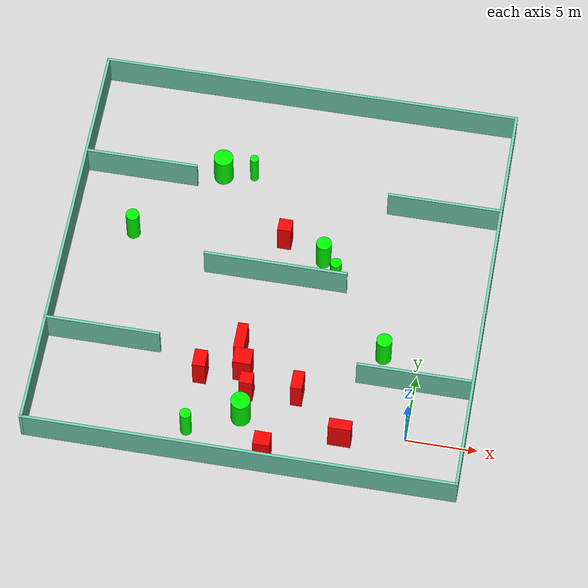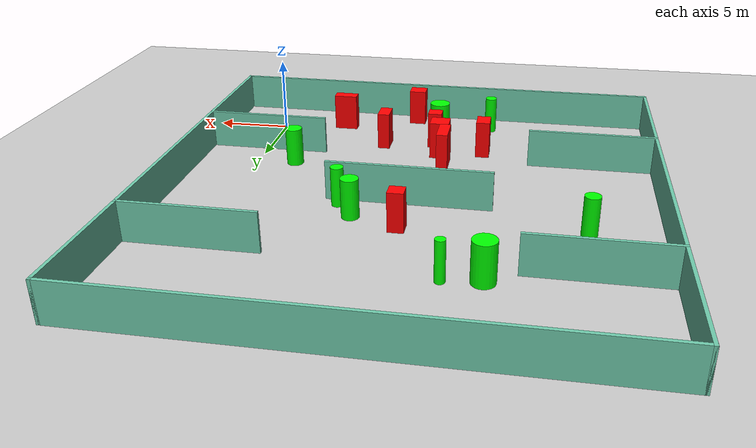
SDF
<sdf version="1.7">
 <world name="default">
  <light name="sun" type="directional">
   <pose>0 0 10 0 -0 0</pose>
   <diffuse>0.8 0.8 0.8 1</diffuse>
   <specular>0.2 0.2 0.2 1</specular>
   <attenuation>
    <range>1000</range>
    <constant>0.9</constant>
    <linear>0.01</linear>
    <quadratic>0.001</quadratic>
   </attenuation>
   <direction>-0.5 0.1 -0.9</direction>
   <spot><inner_angle>0</inner_angle><outer_angle>0</outer_angle><falloff>0</falloff></spot>
  </light>
  <model name="ground_plane">
   <static>1</static>
   <link name="link">
    <collision name="collision">
     <geometry><plane><normal>0 0 1</normal><size>100 100</size></plane></geometry>
     <surface>
      <contact><collide_bitmask>65535</collide_bitmask></contact>
      <friction><ode><mu>100</mu><mu2>50</mu2></ode></friction>
     </surface>
    </collision>
    <visual name="visual">
     <cast_shadows>0</cast_shadows>
     <geometry><plane><normal>0 0 1</normal><size>100 100</size></plane></geometry>
     <material>
      <script><uri>file://media/materials/scripts/gazebo.material</uri><name>Gazebo/Grey</name></script>
     </material>
    </visual>
   </link>
  </model>
  <gravity>0 0 -9.8</gravity>
  <magnetic_field>6e-06 2.3e-05 -4.2e-05</magnetic_field>
  <atmosphere type="adiabatic"/>
  <physics type="ode">
   <max_step_size>0.001</max_step_size>
   <real_time_factor>1</real_time_factor>
   <real_time_update_rate>1000</real_time_update_rate>
  </physics>
  <scene><ambient>0.4 0.4 0.4 1</ambient><background>0.7 0.7 0.7 1</background><shadows>1</shadows></scene>
  <spherical_coordinates>
   <surface_model>EARTH_WGS84</surface_model>
   <latitude_deg>0</latitude_deg>
   <longitude_deg>0</longitude_deg>
   <elevation>0</elevation>
   <heading_deg>0</heading_deg>
  </spherical_coordinates>
  <model name="my_base_walls">
   <link name="Wall_10">
    <collision name="Wall_10_Collision">
     <geometry><box><size>8.2 0.2 2.5</size></box></geometry>
     <pose>0 0 1.25 0 -0 0</pose>
    </collision>
    <visual name="Wall_10_Visual">
     <pose>0 0 1.25 0 -0 0</pose>
     <geometry><box><size>8.2 0.2 2.5</size></box></geometry>
     <material>
      <script><uri>file://media/materials/scripts/gazebo.material</uri><name>Gazebo/Grey</name></script>
      <ambient>0.435294 0.796078 0.67451 1</ambient>
     </material>
     <meta><layer>0</layer></meta>
    </visual>
    <pose>-11 -7 0 0 -0 0</pose>
   </link>
   <link name="Wall_12">
    <collision name="Wall_12_Collision">
     <geometry><box><size>8.2 0.2 2.5</size></box></geometry>
     <pose>0 0 1.25 0 -0 0</pose>
    </collision>
    <visual name="Wall_12_Visual">
     <pose>0 0 1.25 0 -0 0</pose>
     <geometry><box><size>8.2 0.2 2.5</size></box></geometry>
     <material>
      <script><uri>file://media/materials/scripts/gazebo.material</uri><name>Gazebo/Grey</name></script>
      <ambient>0.435294 0.796078 0.67451 1</ambient>
     </material>
     <meta><layer>0</layer></meta>
    </visual>
    <pose>-11 7 0 0 -0 0</pose>
   </link>
   <link name="Wall_14">
    <collision name="Wall_14_Collision">
     <geometry><box><size>8.2 0.2 2.5</size></box></geometry>
     <pose>0 0 1.25 0 -0 0</pose>
    </collision>
    <visual name="Wall_14_Visual">
     <pose>0 0 1.25 0 -0 0</pose>
     <geometry><box><size>8.2 0.2 2.5</size></box></geometry>
     <material>
      <script><uri>file://media/materials/scripts/gazebo.material</uri><name>Gazebo/Grey</name></script>
      <ambient>0.435294 0.796078 0.67451 1</ambient>
     </material>
     <meta><layer>0</layer></meta>
    </visual>
    <pose>11 7 0 0 -0 3.14159</pose>
   </link>
   <link name="Wall_16">
    <collision name="Wall_16_Collision">
     <geometry><box><size>10.2 0.2 2.5</size></box></geometry>
     <pose>0 0 1.25 0 -0 0</pose>
    </collision>
    <visual name="Wall_16_Visual">
     <pose>0 0 1.25 0 -0 0</pose>
     <geometry><box><size>10.2 0.2 2.5</size></box></geometry>
     <material>
      <script><uri>file://media/materials/scripts/gazebo.material</uri><name>Gazebo/Grey</name></script>
      <ambient>0.435294 0.796078 0.67451 1</ambient>
     </material>
     <meta><layer>0</layer></meta>
    </visual>
    <pose>0 0 0 0 -0 3.14159</pose>
   </link>
   <link name="Wall_2">
    <collision name="Wall_2_Collision">
     <geometry><box><size>30.2 0.2 2.5</size></box></geometry>
     <pose>0 0 1.25 0 -0 0</pose>
    </collision>
    <visual name="Wall_2_Visual">
     <pose>0 0 1.25 0 -0 0</pose>
     <geometry><box><size>30.2 0.2 2.5</size></box></geometry>
     <material>
      <script><uri>file://media/materials/scripts/gazebo.material</uri><name>Gazebo/Grey</name></script>
      <ambient>0.435294 0.796078 0.67451 1</ambient>
     </material>
     <meta><layer>0</layer></meta>
    </visual>
    <pose>0 -15 0 0 -0 3.14159</pose>
   </link>
   <link name="Wall_3">
    <collision name="Wall_3_Collision">
     <geometry><box><size>30.2 0.2 2.5</size></box></geometry>
     <pose>0 0 1.25 0 -0 0</pose>
    </collision>
    <visual name="Wall_3_Visual">
     <pose>0 0 1.25 0 -0 0</pose>
     <geometry><box><size>30.2 0.2 2.5</size></box></geometry>
     <material>
      <script><uri>file://media/materials/scripts/gazebo.material</uri><name>Gazebo/Grey</name></script>
      <ambient>0.435294 0.796078 0.67451 1</ambient>
     </material>
     <meta><layer>0</layer></meta>
    </visual>
    <pose>-15 0 0 0 -0 1.5708</pose>
   </link>
   <link name="Wall_4">
    <collision name="Wall_4_Collision">
     <geometry><box><size>30.2 0.2 2.5</size></box></geometry>
     <pose>0 0 1.25 0 -0 0</pose>
    </collision>
    <visual name="Wall_4_Visual">
     <pose>0 0 1.25 0 -0 0</pose>
     <geometry><box><size>30.2 0.2 2.5</size></box></geometry>
     <material>
      <script><uri>file://media/materials/scripts/gazebo.material</uri><name>Gazebo/Grey</name></script>
      <ambient>0.435294 0.796078 0.67451 1</ambient>
     </material>
     <meta><layer>0</layer></meta>
    </visual>
    <pose>0 15 0 0 -0 0</pose>
   </link>
   <link name="Wall_6">
    <collision name="Wall_6_Collision">
     <geometry><box><size>30.2 0.2 2.5</size></box></geometry>
     <pose>0 0 1.25 0 -0 0</pose>
    </collision>
    <visual name="Wall_6_Visual">
     <pose>0 0 1.25 0 -0 0</pose>
     <geometry><box><size>30.2 0.2 2.5</size></box></geometry>
     <material>
      <script><uri>file://media/materials/scripts/gazebo.material</uri><name>Gazebo/Grey</name></script>
      <ambient>0.435294 0.796078 0.67451 1</ambient>
     </material>
     <meta><layer>0</layer></meta>
    </visual>
    <pose>15 0 0 0 -0 1.5708</pose>
   </link>
   <link name="Wall_8">
    <collision name="Wall_8_Collision">
     <geometry><box><size>8.2 0.2 2.5</size></box></geometry>
     <pose>0 0 1.25 0 -0 0</pose>
    </collision>
    <visual name="Wall_8_Visual">
     <pose>0 0 1.25 0 -0 0</pose>
     <geometry><box><size>8.2 0.2 2.5</size></box></geometry>
     <material>
      <script><uri>file://media/materials/scripts/gazebo.material</uri><name>Gazebo/Grey</name></script>
      <ambient>0.435294 0.796078 0.67451 1</ambient>
     </material>
     <meta><layer>0</layer></meta>
    </visual>
    <pose>11 -7 0 0 -0 3.14159</pose>
   </link>
   <static>1</static>
   <pose>-11 11 0 0 -0 0</pose>
  </model>
  <model name="cylinder1">
   <static>1</static>
   <link name="link">
    <inertial>
     <mass>1</mass>
     <inertia><ixx>0.5</ixx><ixy>0</ixy><ixz>0</ixz><iyy>0.5</iyy><iyz>0</iyz><izz>1</izz></inertia>
    </inertial>
    <collision name="collision">
     <geometry><cylinder><radius>0.479275934065315</radius><length>2.5</length></cylinder></geometry>
    </collision>
    <visual name="visual">
     <geometry><cylinder><radius>0.479275934065315</radius><length>2.5</length></cylinder></geometry>
     <material>
      <ambient>0 1 0 1</ambient>
      <diffuse>0 1 0 1</diffuse>
      <specular>0.1 0.1 0.1 1</specular>
      <emissive>0 0 0 0</emissive>
     </material>
    </visual>
   </link>
   <pose>-21.67187772413114 13.193130718413386 1.25 0 0 0</pose>
  </model>
  <model name="cylinder2">
   <static>1</static>
   <link name="link">
    <inertial>
     <mass>1</mass>
     <inertia><ixx>0.5</ixx><ixy>0</ixy><ixz>0</ixz><iyy>0.5</iyy><iyz>0</iyz><izz>1</izz></inertia>
    </inertial>
    <collision name="collision">
     <geometry><cylinder><radius>0.3011946334611452</radius><length>2.5</length></cylinder></geometry>
    </collision>
    <visual name="visual">
     <geometry><cylinder><radius>0.3011946334611452</radius><length>2.5</length></cylinder></geometry>
     <material>
      <ambient>0 1 0 1</ambient>
      <diffuse>0 1 0 1</diffuse>
      <specular>0.1 0.1 0.1 1</specular>
      <emissive>0 0 0 0</emissive>
     </material>
    </visual>
   </link>
   <pose>-13.999172488612405 19.315903019693934 1.25 0 0 0</pose>
  </model>
  <model name="cylinder3">
   <static>1</static>
   <link name="link">
    <inertial>
     <mass>1</mass>
     <inertia><ixx>0.5</ixx><ixy>0</ixy><ixz>0</ixz><iyy>0.5</iyy><iyz>0</iyz><izz>1</izz></inertia>
    </inertial>
    <collision name="collision">
     <geometry><cylinder><radius>0.5443951276443577</radius><length>2.5</length></cylinder></geometry>
    </collision>
    <visual name="visual">
     <geometry><cylinder><radius>0.5443951276443577</radius><length>2.5</length></cylinder></geometry>
     <material>
      <ambient>0 1 0 1</ambient>
      <diffuse>0 1 0 1</diffuse>
      <specular>0.1 0.1 0.1 1</specular>
      <emissive>0 0 0 0</emissive>
     </material>
    </visual>
   </link>
   <pose>-7.918169011554102 13.169883182798799 1.25 0 0 0</pose>
  </model>
  <model name="cylinder4">
   <static>1</static>
   <link name="link">
    <inertial>
     <mass>1</mass>
     <inertia><ixx>0.5</ixx><ixy>0</ixy><ixz>0</ixz><iyy>0.5</iyy><iyz>0</iyz><izz>1</izz></inertia>
    </inertial>
    <collision name="collision">
     <geometry><cylinder><radius>0.6917834307137195</radius><length>2.5</length></cylinder></geometry>
    </collision>
    <visual name="visual">
     <geometry><cylinder><radius>0.6917834307137195</radius><length>2.5</length></cylinder></geometry>
     <material>
      <ambient>0 1 0 1</ambient>
      <diffuse>0 1 0 1</diffuse>
      <specular>0.1 0.1 0.1 1</specular>
      <emissive>0 0 0 0</emissive>
     </material>
    </visual>
   </link>
   <pose>-16.19269732731925 19.021633566787717 1.25 0 0 0</pose>
  </model>
  <model name="cylinder5">
   <static>1</static>
   <link name="link">
    <inertial>
     <mass>1</mass>
     <inertia><ixx>0.5</ixx><ixy>0</ixy><ixz>0</ixz><iyy>0.5</iyy><iyz>0</iyz><izz>1</izz></inertia>
    </inertial>
    <collision name="collision">
     <geometry><cylinder><radius>0.5496870590407489</radius><length>2.5</length></cylinder></geometry>
    </collision>
    <visual name="visual">
     <geometry><cylinder><radius>0.5496870590407489</radius><length>2.5</length></cylinder></geometry>
     <material>
      <ambient>0 1 0 1</ambient>
      <diffuse>0 1 0 1</diffuse>
      <specular>0.1 0.1 0.1 1</specular>
      <emissive>0 0 0 0</emissive>
     </material>
    </visual>
   </link>
   <pose>-2.5119619130384656 6.153312724504678 1.25 0 0 0</pose>
  </model>
  <model name="cylinder6">
   <static>1</static>
   <link name="link">
    <inertial>
     <mass>1</mass>
     <inertia><ixx>0.5</ixx><ixy>0</ixy><ixz>0</ixz><iyy>0.5</iyy><iyz>0</iyz><izz>1</izz></inertia>
    </inertial>
    <collision name="collision">
     <geometry><cylinder><radius>0.6828446008920901</radius><length>2.5</length></cylinder></geometry>
    </collision>
    <visual name="visual">
     <geometry><cylinder><radius>0.6828446008920901</radius><length>2.5</length></cylinder></geometry>
     <material>
      <ambient>0 1 0 1</ambient>
      <diffuse>0 1 0 1</diffuse>
      <specular>0.1 0.1 0.1 1</specular>
      <emissive>0 0 0 0</emissive>
     </material>
    </visual>
   </link>
   <pose>-11.464677009831595 -0.2159337524814351 1.25 0 0 0</pose>
  </model>
  <model name="cylinder7">
   <static>1</static>
   <link name="link">
    <inertial>
     <mass>1</mass>
     <inertia><ixx>0.5</ixx><ixy>0</ixy><ixz>0</ixz><iyy>0.5</iyy><iyz>0</iyz><izz>1</izz></inertia>
    </inertial>
    <collision name="collision">
     <geometry><cylinder><radius>0.39703857765196426</radius><length>2.5</length></cylinder></geometry>
    </collision>
    <visual name="visual">
     <geometry><cylinder><radius>0.39703857765196426</radius><length>2.5</length></cylinder></geometry>
     <material>
      <ambient>0 1 0 1</ambient>
      <diffuse>0 1 0 1</diffuse>
      <specular>0.1 0.1 0.1 1</specular>
      <emissive>0 0 0 0</emissive>
     </material>
    </visual>
   </link>
   <pose>-6.823534096429054 11.737651089914658 1.25 0 0 0</pose>
  </model>
  <model name="cylinder8">
   <static>1</static>
   <link name="link">
    <inertial>
     <mass>1</mass>
     <inertia><ixx>0.5</ixx><ixy>0</ixy><ixz>0</ixz><iyy>0.5</iyy><iyz>0</iyz><izz>1</izz></inertia>
    </inertial>
    <collision name="collision">
     <geometry><cylinder><radius>0.3948347838094673</radius><length>2.5</length></cylinder></geometry>
    </collision>
    <visual name="visual">
     <geometry><cylinder><radius>0.3948347838094673</radius><length>2.5</length></cylinder></geometry>
     <material>
      <ambient>0 1 0 1</ambient>
      <diffuse>0 1 0 1</diffuse>
      <specular>0.1 0.1 0.1 1</specular>
      <emissive>0 0 0 0</emissive>
     </material>
    </visual>
   </link>
   <pose>-14.994029037398413 -1.8477396249742664 1.25 0 0 0</pose>
  </model>
  <model name="box1">
   <static>1</static>
   <link name="link">
    <inertial>
     <mass>1</mass>
     <inertia><ixx>0.083</ixx><ixy>0</ixy><ixz>0</ixz><iyy>0.083</iyy><iyz>0</iyz><izz>0.083</izz></inertia>
    </inertial>
    <collision name="collision">
     <geometry><box><size>0.7989513192436055 1.4007784696725711 2.5</size></box></geometry>
    </collision>
    <visual name="visual">
     <geometry><box><size>0.7989513192436055 1.4007784696725711 2.5</size></box></geometry>
     <material>
      <ambient>1 0 0 1</ambient>
      <diffuse>1 0 0 1</diffuse>
      <specular>0.1 0.1 0.1 1</specular>
      <emissive>0 0 0 0</emissive>
     </material>
    </visual>
    <sensor name="my_contact" type="contact">
     <contact><collision>box_collision</collision><topic>__default_topic__</topic></contact>
    </sensor>
   </link>
   <pose>-7.890121734239164 2.054780877643081 1.25 0 0 0</pose>
  </model>
  <model name="box2">
   <static>1</static>
   <link name="link">
    <inertial>
     <mass>1</mass>
     <inertia><ixx>0.083</ixx><ixy>0</ixy><ixz>0</ixz><iyy>0.083</iyy><iyz>0</iyz><izz>0.083</izz></inertia>
    </inertial>
    <collision name="collision">
     <geometry><box><size>1.592010011717532 0.7604740458732278 2.5</size></box></geometry>
    </collision>
    <visual name="visual">
     <geometry><box><size>1.592010011717532 0.7604740458732278 2.5</size></box></geometry>
     <material>
      <ambient>1 0 0 1</ambient>
      <diffuse>1 0 0 1</diffuse>
      <specular>0.1 0.1 0.1 1</specular>
      <emissive>0 0 0 0</emissive>
     </material>
    </visual>
    <sensor name="my_contact" type="contact">
     <contact><collision>box_collision</collision><topic>__default_topic__</topic></contact>
    </sensor>
   </link>
   <pose>-4.452342691402761 -0.8610636365841615 1.25 0 0 0</pose>
  </model>
  <model name="box3">
   <static>1</static>
   <link name="link">
    <inertial>
     <mass>1</mass>
     <inertia><ixx>0.083</ixx><ixy>0</ixy><ixz>0</ixz><iyy>0.083</iyy><iyz>0</iyz><izz>0.083</izz></inertia>
    </inertial>
    <collision name="collision">
     <geometry><box><size>0.7424159990233044 1.9906120568354935 2.5</size></box></geometry>
    </collision>
    <visual name="visual">
     <geometry><box><size>0.7424159990233044 1.9906120568354935 2.5</size></box></geometry>
     <material>
      <ambient>1 0 0 1</ambient>
      <diffuse>1 0 0 1</diffuse>
      <specular>0.1 0.1 0.1 1</specular>
      <emissive>0 0 0 0</emissive>
     </material>
    </visual>
    <sensor name="my_contact" type="contact">
     <contact><collision>box_collision</collision><topic>__default_topic__</topic></contact>
    </sensor>
   </link>
   <pose>-12.339851035466467 4.822196631077025 1.25 0 0 0</pose>
  </model>
  <model name="box4">
   <static>1</static>
   <link name="link">
    <inertial>
     <mass>1</mass>
     <inertia><ixx>0.083</ixx><ixy>0</ixy><ixz>0</ixz><iyy>0.083</iyy><iyz>0</iyz><izz>0.083</izz></inertia>
    </inertial>
    <collision name="collision">
     <geometry><box><size>0.9115372666073981 1.2849892741448947 2.5</size></box></geometry>
    </collision>
    <visual name="visual">
     <geometry><box><size>0.9115372666073981 1.2849892741448947 2.5</size></box></geometry>
     <material>
      <ambient>1 0 0 1</ambient>
      <diffuse>1 0 0 1</diffuse>
      <specular>0.1 0.1 0.1 1</specular>
      <emissive>0 0 0 0</emissive>
     </material>
    </visual>
    <sensor name="my_contact" type="contact">
     <contact><collision>box_collision</collision><topic>__default_topic__</topic></contact>
    </sensor>
   </link>
   <pose>-14.801512305732333 2.598932632487024 1.25 0 0 0</pose>
  </model>
  <model name="box5">
   <static>1</static>
   <link name="link">
    <inertial>
     <mass>1</mass>
     <inertia><ixx>0.083</ixx><ixy>0</ixy><ixz>0</ixz><iyy>0.083</iyy><iyz>0</iyz><izz>0.083</izz></inertia>
    </inertial>
    <collision name="collision">
     <geometry><box><size>1.2753636967330932 1.2151749991857885 2.5</size></box></geometry>
    </collision>
    <visual name="visual">
     <geometry><box><size>1.2753636967330932 1.2151749991857885 2.5</size></box></geometry>
     <material>
      <ambient>1 0 0 1</ambient>
      <diffuse>1 0 0 1</diffuse>
      <specular>0.1 0.1 0.1 1</specular>
      <emissive>0 0 0 0</emissive>
     </material>
    </visual>
    <sensor name="my_contact" type="contact">
     <contact><collision>box_collision</collision><topic>__default_topic__</topic></contact>
    </sensor>
   </link>
   <pose>-11.918798807886759 3.262139022075856 1.25 0 0 0</pose>
  </model>
  <model name="box6">
   <static>1</static>
   <link name="link">
    <inertial>
     <mass>1</mass>
     <inertia><ixx>0.083</ixx><ixy>0</ixy><ixz>0</ixz><iyy>0.083</iyy><iyz>0</iyz><izz>0.083</izz></inertia>
    </inertial>
    <collision name="collision">
     <geometry><box><size>0.9717317232270688 0.956916066305119 2.5</size></box></geometry>
    </collision>
    <visual name="visual">
     <geometry><box><size>0.9717317232270688 0.956916066305119 2.5</size></box></geometry>
     <material>
      <ambient>1 0 0 1</ambient>
      <diffuse>1 0 0 1</diffuse>
      <specular>0.1 0.1 0.1 1</specular>
      <emissive>0 0 0 0</emissive>
     </material>
    </visual>
    <sensor name="my_contact" type="contact">
     <contact><collision>box_collision</collision><topic>__default_topic__</topic></contact>
    </sensor>
   </link>
   <pose>-10.865535053023226 14.205973243825266 1.25 0 0 0</pose>
  </model>
  <model name="box7">
   <static>1</static>
   <link name="link">
    <inertial>
     <mass>1</mass>
     <inertia><ixx>0.083</ixx><ixy>0</ixy><ixz>0</ixz><iyy>0.083</iyy><iyz>0</iyz><izz>0.083</izz></inertia>
    </inertial>
    <collision name="collision">
     <geometry><box><size>1.156173950917581 1.0334171745380427 2.5</size></box></geometry>
    </collision>
    <visual name="visual">
     <geometry><box><size>1.156173950917581 1.0334171745380427 2.5</size></box></geometry>
     <material>
      <ambient>1 0 0 1</ambient>
      <diffuse>1 0 0 1</diffuse>
      <specular>0.1 0.1 0.1 1</specular>
      <emissive>0 0 0 0</emissive>
     </material>
    </visual>
    <sensor name="my_contact" type="contact">
     <contact><collision>box_collision</collision><topic>__default_topic__</topic></contact>
    </sensor>
   </link>
   <pose>-9.506195041986363 -2.8398169537809617 1.25 0 0 0</pose>
  </model>
  <model name="box8">
   <static>1</static>
   <link name="link">
    <inertial>
     <mass>1</mass>
     <inertia><ixx>0.083</ixx><ixy>0</ixy><ixz>0</ixz><iyy>0.083</iyy><iyz>0</iyz><izz>0.083</izz></inertia>
    </inertial>
    <collision name="collision">
     <geometry><box><size>0.9341817564134806 0.9135272563339514 2.5</size></box></geometry>
    </collision>
    <visual name="visual">
     <geometry><box><size>0.9341817564134806 0.9135272563339514 2.5</size></box></geometry>
     <material>
      <ambient>1 0 0 1</ambient>
      <diffuse>1 0 0 1</diffuse>
      <specular>0.1 0.1 0.1 1</specular>
      <emissive>0 0 0 0</emissive>
     </material>
    </visual>
    <sensor name="my_contact" type="contact">
     <contact><collision>box_collision</collision><topic>__default_topic__</topic></contact>
    </sensor>
   </link>
   <pose>-11.380770181542417 1.6140421157463596 1.25 0 0 0</pose>
  </model>
 </world>
</sdf>
